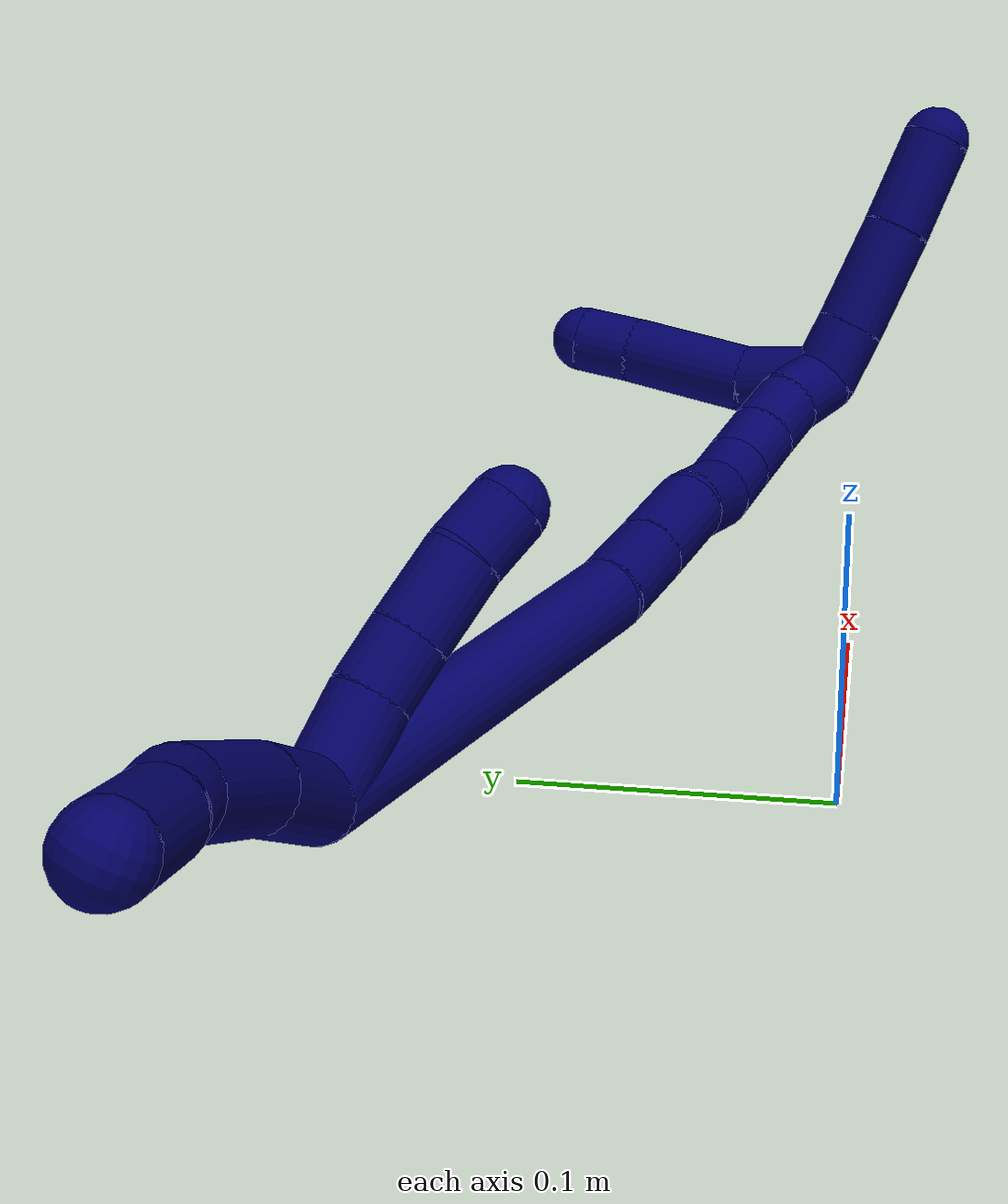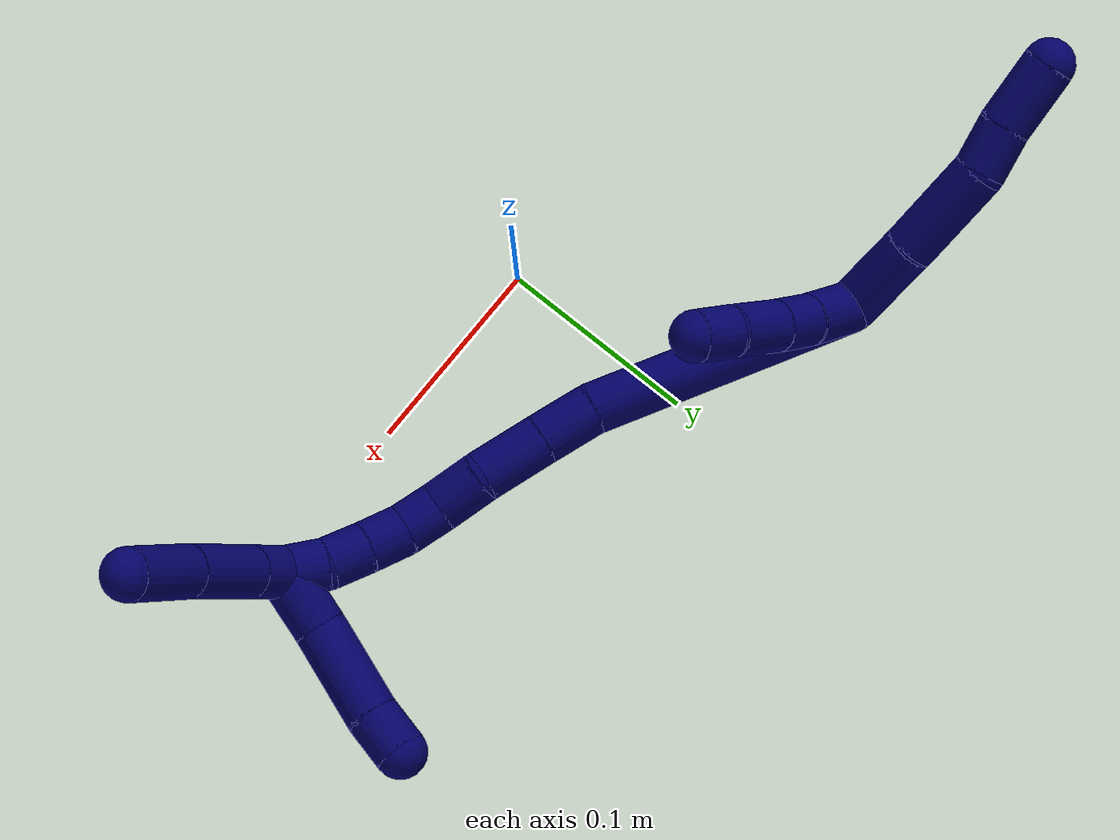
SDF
<sdf version="1.7">
 <world name="default">
  <model name="7">
   <static>0</static>
   <link name="7">
    <collision name="collision-cylinder-e_1_2_8">
     <pose>-0.018203 0.010886 0.001438 -1.43946 -1.02801 0.919199</pose>
     <geometry><cylinder><radius>0.0125</radius><length>0.042516</length></cylinder></geometry>
     <surface>
      <friction><ode><mu>1.16</mu><mu2>1.16</mu2><slip1>0</slip1><slip2>0</slip2></ode></friction>
      <contact><ode><kp>1e+06</kp><kd>1</kd><max_vel>0</max_vel><min_depth>0.001</min_depth></ode></contact>
     </surface>
    </collision>
    <visual name="visual-cylinder-e_1_2_8">
     <pose>-0.018203 0.010886 0.001438 -1.43946 -1.02801 0.919199</pose>
     <geometry><cylinder><radius>0.0125</radius><length>0.042516</length></cylinder></geometry>
     <material><ambient>0.003922 0 0.403922 1</ambient></material>
    </visual>
    <collision name="collision-cylinder-e_2_8_9">
     <pose>-0.058462 0.032817 0.002565 -1.59892 -1.10638 1.13168</pose>
     <geometry><cylinder><radius>0.0125</radius><length>0.049338</length></cylinder></geometry>
     <surface>
      <friction><ode><mu>1.16</mu><mu2>1.16</mu2><slip1>0</slip1><slip2>0</slip2></ode></friction>
      <contact><ode><kp>1e+06</kp><kd>1</kd><max_vel>0</max_vel><min_depth>0.001</min_depth></ode></contact>
     </surface>
    </collision>
    <visual name="visual-cylinder-e_2_8_9">
     <pose>-0.058462 0.032817 0.002565 -1.59892 -1.10638 1.13168</pose>
     <geometry><cylinder><radius>0.0125</radius><length>0.049338</length></cylinder></geometry>
     <material><ambient>0.003922 0 0.403922 1</ambient></material>
    </visual>
    <collision name="collision-cylinder-e_3_9_10">
     <pose>-0.092172 0.045883 0.001649 -1.86168 -1.39166 1.68551</pose>
     <geometry><cylinder><radius>0.0125</radius><length>0.023688</length></cylinder></geometry>
     <surface>
      <friction><ode><mu>1.16</mu><mu2>1.16</mu2><slip1>0</slip1><slip2>0</slip2></ode></friction>
      <contact><ode><kp>1e+06</kp><kd>1</kd><max_vel>0</max_vel><min_depth>0.001</min_depth></ode></contact>
     </surface>
    </collision>
    <visual name="visual-cylinder-e_3_9_10">
     <pose>-0.092172 0.045883 0.001649 -1.86168 -1.39166 1.68551</pose>
     <geometry><cylinder><radius>0.0125</radius><length>0.023688</length></cylinder></geometry>
     <material><ambient>0.003922 0 0.403922 1</ambient></material>
    </visual>
    <collision name="collision-cylinder-e_4_10_6">
     <pose>-0.12029 0.052622 -0.000836 -1.94999 -1.27162 1.65558</pose>
     <geometry><cylinder><radius>0.0125</radius><length>0.034458</length></cylinder></geometry>
     <surface>
      <friction><ode><mu>1.16</mu><mu2>1.16</mu2><slip1>0</slip1><slip2>0</slip2></ode></friction>
      <contact><ode><kp>1e+06</kp><kd>1</kd><max_vel>0</max_vel><min_depth>0.001</min_depth></ode></contact>
     </surface>
    </collision>
    <visual name="visual-cylinder-e_4_10_6">
     <pose>-0.12029 0.052622 -0.000836 -1.94999 -1.27162 1.65558</pose>
     <geometry><cylinder><radius>0.0125</radius><length>0.034458</length></cylinder></geometry>
     <material><ambient>0.003922 0 0.403922 1</ambient></material>
    </visual>
    <collision name="collision-cylinder-e_1_2_11">
     <pose>0.005017 -0.000759 0.015047 0.050424 0.321432 0.008176</pose>
     <geometry><cylinder><radius>0.0125</radius><length>0.031758</length></cylinder></geometry>
     <surface>
      <friction><ode><mu>1.16</mu><mu2>1.16</mu2><slip1>0</slip1><slip2>0</slip2></ode></friction>
      <contact><ode><kp>1e+06</kp><kd>1</kd><max_vel>0</max_vel><min_depth>0.001</min_depth></ode></contact>
     </surface>
    </collision>
    <visual name="visual-cylinder-e_1_2_11">
     <pose>0.005017 -0.000759 0.015047 0.050424 0.321432 0.008176</pose>
     <geometry><cylinder><radius>0.0125</radius><length>0.031758</length></cylinder></geometry>
     <material><ambient>0.003922 0 0.403922 1</ambient></material>
    </visual>
    <collision name="collision-cylinder-e_2_11_12">
     <pose>0.012844 -0.002969 0.039745 0.149104 0.280454 0.021085</pose>
     <geometry><cylinder><radius>0.0125</radius><length>0.020313</length></cylinder></geometry>
     <surface>
      <friction><ode><mu>1.16</mu><mu2>1.16</mu2><slip1>0</slip1><slip2>0</slip2></ode></friction>
      <contact><ode><kp>1e+06</kp><kd>1</kd><max_vel>0</max_vel><min_depth>0.001</min_depth></ode></contact>
     </surface>
    </collision>
    <visual name="visual-cylinder-e_2_11_12">
     <pose>0.012844 -0.002969 0.039745 0.149104 0.280454 0.021085</pose>
     <geometry><cylinder><radius>0.0125</radius><length>0.020313</length></cylinder></geometry>
     <material><ambient>0.003922 0 0.403922 1</ambient></material>
    </visual>
    <collision name="collision-cylinder-e_3_12_13">
     <pose>0.018952 -0.006674 0.062775 0.167 0.238368 0.020044</pose>
     <geometry><cylinder><radius>0.0125</radius><length>0.027925</length></cylinder></geometry>
     <surface>
      <friction><ode><mu>1.16</mu><mu2>1.16</mu2><slip1>0</slip1><slip2>0</slip2></ode></friction>
      <contact><ode><kp>1e+06</kp><kd>1</kd><max_vel>0</max_vel><min_depth>0.001</min_depth></ode></contact>
     </surface>
    </collision>
    <visual name="visual-cylinder-e_3_12_13">
     <pose>0.018952 -0.006674 0.062775 0.167 0.238368 0.020044</pose>
     <geometry><cylinder><radius>0.0125</radius><length>0.027925</length></cylinder></geometry>
     <material><ambient>0.003922 0 0.403922 1</ambient></material>
    </visual>
    <collision name="collision-cylinder-e_4_13_5">
     <pose>0.025309 -0.011837 0.085222 0.310302 0.310881 0.04901</pose>
     <geometry><cylinder><radius>0.0125</radius><length>0.020004</length></cylinder></geometry>
     <surface>
      <friction><ode><mu>1.16</mu><mu2>1.16</mu2><slip1>0</slip1><slip2>0</slip2></ode></friction>
      <contact><ode><kp>1e+06</kp><kd>1</kd><max_vel>0</max_vel><min_depth>0.001</min_depth></ode></contact>
     </surface>
    </collision>
    <visual name="visual-cylinder-e_4_13_5">
     <pose>0.025309 -0.011837 0.085222 0.310302 0.310881 0.04901</pose>
     <geometry><cylinder><radius>0.0125</radius><length>0.020004</length></cylinder></geometry>
     <material><ambient>0.003922 0 0.403922 1</ambient></material>
    </visual>
    <collision name="collision-cylinder-e_1_2_14">
     <pose>0.040664 -0.033105 0.041497 0.673378 0.653681 0.236205</pose>
     <geometry><cylinder><radius>0.0125</radius><length>0.133739</length></cylinder></geometry>
     <surface>
      <friction><ode><mu>1.16</mu><mu2>1.16</mu2><slip1>0</slip1><slip2>0</slip2></ode></friction>
      <contact><ode><kp>1e+06</kp><kd>1</kd><max_vel>0</max_vel><min_depth>0.001</min_depth></ode></contact>
     </surface>
    </collision>
    <visual name="visual-cylinder-e_1_2_14">
     <pose>0.040664 -0.033105 0.041497 0.673378 0.653681 0.236205</pose>
     <geometry><cylinder><radius>0.0125</radius><length>0.133739</length></cylinder></geometry>
     <material><ambient>0.003922 0 0.403922 1</ambient></material>
    </visual>
    <collision name="collision-cylinder-e_2_14_15">
     <pose>0.091403 -0.071295 0.091443 0.5418 0.796152 0.23253</pose>
     <geometry><cylinder><radius>0.0125</radius><length>0.028195</length></cylinder></geometry>
     <surface>
      <friction><ode><mu>1.16</mu><mu2>1.16</mu2><slip1>0</slip1><slip2>0</slip2></ode></friction>
      <contact><ode><kp>1e+06</kp><kd>1</kd><max_vel>0</max_vel><min_depth>0.001</min_depth></ode></contact>
     </surface>
    </collision>
    <visual name="visual-cylinder-e_2_14_15">
     <pose>0.091403 -0.071295 0.091443 0.5418 0.796152 0.23253</pose>
     <geometry><cylinder><radius>0.0125</radius><length>0.028195</length></cylinder></geometry>
     <material><ambient>0.003922 0 0.403922 1</ambient></material>
    </visual>
    <collision name="collision-cylinder-e_3_15_16">
     <pose>0.113374 -0.082095 0.109883 0.519583 0.801856 0.224391</pose>
     <geometry><cylinder><radius>0.0125</radius><length>0.033107</length></cylinder></geometry>
     <surface>
      <friction><ode><mu>1.16</mu><mu2>1.16</mu2><slip1>0</slip1><slip2>0</slip2></ode></friction>
      <contact><ode><kp>1e+06</kp><kd>1</kd><max_vel>0</max_vel><min_depth>0.001</min_depth></ode></contact>
     </surface>
    </collision>
    <visual name="visual-cylinder-e_3_15_16">
     <pose>0.113374 -0.082095 0.109883 0.519583 0.801856 0.224391</pose>
     <geometry><cylinder><radius>0.0125</radius><length>0.033107</length></cylinder></geometry>
     <material><ambient>0.003922 0 0.403922 1</ambient></material>
    </visual>
    <collision name="collision-cylinder-e_4_16_17">
     <pose>0.135188 -0.093673 0.124309 0.923175 0.932964 0.490858</pose>
     <geometry><cylinder><radius>0.0125</radius><length>0.024689</length></cylinder></geometry>
     <surface>
      <friction><ode><mu>1.16</mu><mu2>1.16</mu2><slip1>0</slip1><slip2>0</slip2></ode></friction>
      <contact><ode><kp>1e+06</kp><kd>1</kd><max_vel>0</max_vel><min_depth>0.001</min_depth></ode></contact>
     </surface>
    </collision>
    <visual name="visual-cylinder-e_4_16_17">
     <pose>0.135188 -0.093673 0.124309 0.923175 0.932964 0.490858</pose>
     <geometry><cylinder><radius>0.0125</radius><length>0.024689</length></cylinder></geometry>
     <material><ambient>0.003922 0 0.403922 1</ambient></material>
    </visual>
    <collision name="collision-cylinder-e_5_17_18">
     <pose>0.152425 -0.1027 0.134953 0.471394 0.809904 0.205164</pose>
     <geometry><cylinder><radius>0.0125</radius><length>0.020214</length></cylinder></geometry>
     <surface>
      <friction><ode><mu>1.16</mu><mu2>1.16</mu2><slip1>0</slip1><slip2>0</slip2></ode></friction>
      <contact><ode><kp>1e+06</kp><kd>1</kd><max_vel>0</max_vel><min_depth>0.001</min_depth></ode></contact>
     </surface>
    </collision>
    <visual name="visual-cylinder-e_5_17_18">
     <pose>0.152425 -0.1027 0.134953 0.471394 0.809904 0.205164</pose>
     <geometry><cylinder><radius>0.0125</radius><length>0.020214</length></cylinder></geometry>
     <material><ambient>0.003922 0 0.403922 1</ambient></material>
    </visual>
    <collision name="collision-cylinder-e_6_18_19">
     <pose>0.165535 -0.10891 0.14874 0.382063 0.616758 0.12305</pose>
     <geometry><cylinder><radius>0.0125</radius><length>0.020021</length></cylinder></geometry>
     <surface>
      <friction><ode><mu>1.16</mu><mu2>1.16</mu2><slip1>0</slip1><slip2>0</slip2></ode></friction>
      <contact><ode><kp>1e+06</kp><kd>1</kd><max_vel>0</max_vel><min_depth>0.001</min_depth></ode></contact>
     </surface>
    </collision>
    <visual name="visual-cylinder-e_6_18_19">
     <pose>0.165535 -0.10891 0.14874 0.382063 0.616758 0.12305</pose>
     <geometry><cylinder><radius>0.0125</radius><length>0.020021</length></cylinder></geometry>
     <material><ambient>0.003922 0 0.403922 1</ambient></material>
    </visual>
    <collision name="collision-cylinder-e_7_19_20">
     <pose>0.176828 -0.115136 0.164043 0.390645 0.582408 0.118459</pose>
     <geometry><cylinder><radius>0.0125</radius><length>0.020009</length></cylinder></geometry>
     <surface>
      <friction><ode><mu>1.16</mu><mu2>1.16</mu2><slip1>0</slip1><slip2>0</slip2></ode></friction>
      <contact><ode><kp>1e+06</kp><kd>1</kd><max_vel>0</max_vel><min_depth>0.001</min_depth></ode></contact>
     </surface>
    </collision>
    <visual name="visual-cylinder-e_7_19_20">
     <pose>0.176828 -0.115136 0.164043 0.390645 0.582408 0.118459</pose>
     <geometry><cylinder><radius>0.0125</radius><length>0.020009</length></cylinder></geometry>
     <material><ambient>0.003922 0 0.403922 1</ambient></material>
    </visual>
    <collision name="collision-cylinder-e_8_20_1">
     <pose>0.186569 -0.123482 0.179228 0.605548 0.437006 0.138504</pose>
     <geometry><cylinder><radius>0.0125</radius><length>0.020025</length></cylinder></geometry>
     <surface>
      <friction><ode><mu>1.16</mu><mu2>1.16</mu2><slip1>0</slip1><slip2>0</slip2></ode></friction>
      <contact><ode><kp>1e+06</kp><kd>1</kd><max_vel>0</max_vel><min_depth>0.001</min_depth></ode></contact>
     </surface>
    </collision>
    <visual name="visual-cylinder-e_8_20_1">
     <pose>0.186569 -0.123482 0.179228 0.605548 0.437006 0.138504</pose>
     <geometry><cylinder><radius>0.0125</radius><length>0.020025</length></cylinder></geometry>
     <material><ambient>0.003922 0 0.403922 1</ambient></material>
    </visual>
    <collision name="collision-cylinder-e_1_1_21">
     <pose>0.190824 -0.128658 0.197638 0.001147 0.001557 1e-06</pose>
     <geometry><cylinder><radius>0.0125</radius><length>0.021903</length></cylinder></geometry>
     <surface>
      <friction><ode><mu>1.16</mu><mu2>1.16</mu2><slip1>0</slip1><slip2>0</slip2></ode></friction>
      <contact><ode><kp>1e+06</kp><kd>1</kd><max_vel>0</max_vel><min_depth>0.001</min_depth></ode></contact>
     </surface>
    </collision>
    <visual name="visual-cylinder-e_1_1_21">
     <pose>0.190824 -0.128658 0.197638 0.001147 0.001557 1e-06</pose>
     <geometry><cylinder><radius>0.0125</radius><length>0.021903</length></cylinder></geometry>
     <material><ambient>0.003922 0 0.403922 1</ambient></material>
    </visual>
    <collision name="collision-cylinder-e_2_21_22">
     <pose>0.190856 -0.128047 0.22888 -0.030718 0.000756 -1.2e-05</pose>
     <geometry><cylinder><radius>0.0125</radius><length>0.040601</length></cylinder></geometry>
     <surface>
      <friction><ode><mu>1.16</mu><mu2>1.16</mu2><slip1>0</slip1><slip2>0</slip2></ode></friction>
      <contact><ode><kp>1e+06</kp><kd>1</kd><max_vel>0</max_vel><min_depth>0.001</min_depth></ode></contact>
     </surface>
    </collision>
    <visual name="visual-cylinder-e_2_21_22">
     <pose>0.190856 -0.128047 0.22888 -0.030718 0.000756 -1.2e-05</pose>
     <geometry><cylinder><radius>0.0125</radius><length>0.040601</length></cylinder></geometry>
     <material><ambient>0.003922 0 0.403922 1</ambient></material>
    </visual>
    <collision name="collision-cylinder-e_3_22_4">
     <pose>0.191533 -0.12646 0.267883 -0.051417 0.035299 -0.000908</pose>
     <geometry><cylinder><radius>0.0125</radius><length>0.037496</length></cylinder></geometry>
     <surface>
      <friction><ode><mu>1.16</mu><mu2>1.16</mu2><slip1>0</slip1><slip2>0</slip2></ode></friction>
      <contact><ode><kp>1e+06</kp><kd>1</kd><max_vel>0</max_vel><min_depth>0.001</min_depth></ode></contact>
     </surface>
    </collision>
    <visual name="visual-cylinder-e_3_22_4">
     <pose>0.191533 -0.12646 0.267883 -0.051417 0.035299 -0.000908</pose>
     <geometry><cylinder><radius>0.0125</radius><length>0.037496</length></cylinder></geometry>
     <material><ambient>0.003922 0 0.403922 1</ambient></material>
    </visual>
    <collision name="collision-cylinder-e_1_1_23">
     <pose>0.200358 -0.118168 0.180678 -2.09143 0.669103 -1.08089</pose>
     <geometry><cylinder><radius>0.0125</radius><length>0.030795</length></cylinder></geometry>
     <surface>
      <friction><ode><mu>1.16</mu><mu2>1.16</mu2><slip1>0</slip1><slip2>0</slip2></ode></friction>
      <contact><ode><kp>1e+06</kp><kd>1</kd><max_vel>0</max_vel><min_depth>0.001</min_depth></ode></contact>
     </surface>
    </collision>
    <visual name="visual-cylinder-e_1_1_23">
     <pose>0.200358 -0.118168 0.180678 -2.09143 0.669103 -1.08089</pose>
     <geometry><cylinder><radius>0.0125</radius><length>0.030795</length></cylinder></geometry>
     <material><ambient>0.003922 0 0.403922 1</ambient></material>
    </visual>
    <collision name="collision-cylinder-e_2_23_24">
     <pose>0.22354 -0.088592 0.170399 -1.79082 0.6084 -0.74703</pose>
     <geometry><cylinder><radius>0.0125</radius><length>0.047699</length></cylinder></geometry>
     <surface>
      <friction><ode><mu>1.16</mu><mu2>1.16</mu2><slip1>0</slip1><slip2>0</slip2></ode></friction>
      <contact><ode><kp>1e+06</kp><kd>1</kd><max_vel>0</max_vel><min_depth>0.001</min_depth></ode></contact>
     </surface>
    </collision>
    <visual name="visual-cylinder-e_2_23_24">
     <pose>0.22354 -0.088592 0.170399 -1.79082 0.6084 -0.74703</pose>
     <geometry><cylinder><radius>0.0125</radius><length>0.047699</length></cylinder></geometry>
     <material><ambient>0.003922 0 0.403922 1</ambient></material>
    </visual>
    <collision name="collision-cylinder-e_3_24_3">
     <pose>0.242329 -0.06037 0.163725 -1.82833 0.500267 -0.640178</pose>
     <geometry><cylinder><radius>0.0125</radius><length>0.021505</length></cylinder></geometry>
     <surface>
      <friction><ode><mu>1.16</mu><mu2>1.16</mu2><slip1>0</slip1><slip2>0</slip2></ode></friction>
      <contact><ode><kp>1e+06</kp><kd>1</kd><max_vel>0</max_vel><min_depth>0.001</min_depth></ode></contact>
     </surface>
    </collision>
    <visual name="visual-cylinder-e_3_24_3">
     <pose>0.242329 -0.06037 0.163725 -1.82833 0.500267 -0.640178</pose>
     <geometry><cylinder><radius>0.0125</radius><length>0.021505</length></cylinder></geometry>
     <material><ambient>0.003922 0 0.403922 1</ambient></material>
    </visual>
    <collision name="collision-sphere-3">
     <pose>0.247486 -0.051246 0.161322 0 -0 0</pose>
     <geometry><sphere><radius>0.0125</radius></sphere></geometry>
     <surface>
      <friction><ode><mu>1.16</mu><mu2>1.16</mu2><slip1>0</slip1><slip2>0</slip2></ode></friction>
      <contact><ode><kp>1e+06</kp><kd>1</kd><max_vel>0</max_vel><min_depth>0.001</min_depth></ode></contact>
     </surface>
    </collision>
    <visual name="visual-sphere-3">
     <pose>0.247486 -0.051246 0.161322 0 -0 0</pose>
     <geometry><sphere><radius>0.0125</radius></sphere></geometry>
     <material><ambient>0.003922 0 0.403922 1</ambient></material>
    </visual>
    <collision name="collision-sphere-24">
     <pose>0.237171 -0.069494 0.166128 0 -0 0</pose>
     <geometry><sphere><radius>0.0125</radius></sphere></geometry>
     <surface>
      <friction><ode><mu>1.16</mu><mu2>1.16</mu2><slip1>0</slip1><slip2>0</slip2></ode></friction>
      <contact><ode><kp>1e+06</kp><kd>1</kd><max_vel>0</max_vel><min_depth>0.001</min_depth></ode></contact>
     </surface>
    </collision>
    <visual name="visual-sphere-24">
     <pose>0.237171 -0.069494 0.166128 0 -0 0</pose>
     <geometry><sphere><radius>0.0125</radius></sphere></geometry>
     <material><ambient>0.003922 0 0.403922 1</ambient></material>
    </visual>
    <collision name="collision-sphere-23">
     <pose>0.209908 -0.10769 0.174671 0 -0 0</pose>
     <geometry><sphere><radius>0.0125</radius></sphere></geometry>
     <surface>
      <friction><ode><mu>1.16</mu><mu2>1.16</mu2><slip1>0</slip1><slip2>0</slip2></ode></friction>
      <contact><ode><kp>1e+06</kp><kd>1</kd><max_vel>0</max_vel><min_depth>0.001</min_depth></ode></contact>
     </surface>
    </collision>
    <visual name="visual-sphere-23">
     <pose>0.209908 -0.10769 0.174671 0 -0 0</pose>
     <geometry><sphere><radius>0.0125</radius></sphere></geometry>
     <material><ambient>0.003922 0 0.403922 1</ambient></material>
    </visual>
    <collision name="collision-sphere-4">
     <pose>0.192195 -0.125497 0.286594 0 -0 0</pose>
     <geometry><sphere><radius>0.0125</radius></sphere></geometry>
     <surface>
      <friction><ode><mu>1.16</mu><mu2>1.16</mu2><slip1>0</slip1><slip2>0</slip2></ode></friction>
      <contact><ode><kp>1e+06</kp><kd>1</kd><max_vel>0</max_vel><min_depth>0.001</min_depth></ode></contact>
     </surface>
    </collision>
    <visual name="visual-sphere-4">
     <pose>0.192195 -0.125497 0.286594 0 -0 0</pose>
     <geometry><sphere><radius>0.0125</radius></sphere></geometry>
     <material><ambient>0.003922 0 0.403922 1</ambient></material>
    </visual>
    <collision name="collision-sphere-22">
     <pose>0.190871 -0.127423 0.249171 0 -0 0</pose>
     <geometry><sphere><radius>0.0125</radius></sphere></geometry>
     <surface>
      <friction><ode><mu>1.16</mu><mu2>1.16</mu2><slip1>0</slip1><slip2>0</slip2></ode></friction>
      <contact><ode><kp>1e+06</kp><kd>1</kd><max_vel>0</max_vel><min_depth>0.001</min_depth></ode></contact>
     </surface>
    </collision>
    <visual name="visual-sphere-22">
     <pose>0.190871 -0.127423 0.249171 0 -0 0</pose>
     <geometry><sphere><radius>0.0125</radius></sphere></geometry>
     <material><ambient>0.003922 0 0.403922 1</ambient></material>
    </visual>
    <collision name="collision-sphere-21">
     <pose>0.190841 -0.12867 0.208589 0 -0 0</pose>
     <geometry><sphere><radius>0.0125</radius></sphere></geometry>
     <surface>
      <friction><ode><mu>1.16</mu><mu2>1.16</mu2><slip1>0</slip1><slip2>0</slip2></ode></friction>
      <contact><ode><kp>1e+06</kp><kd>1</kd><max_vel>0</max_vel><min_depth>0.001</min_depth></ode></contact>
     </surface>
    </collision>
    <visual name="visual-sphere-21">
     <pose>0.190841 -0.12867 0.208589 0 -0 0</pose>
     <geometry><sphere><radius>0.0125</radius></sphere></geometry>
     <material><ambient>0.003922 0 0.403922 1</ambient></material>
    </visual>
    <collision name="collision-sphere-1">
     <pose>0.190807 -0.128645 0.186686 0 -0 0</pose>
     <geometry><sphere><radius>0.0125</radius></sphere></geometry>
     <surface>
      <friction><ode><mu>1.16</mu><mu2>1.16</mu2><slip1>0</slip1><slip2>0</slip2></ode></friction>
      <contact><ode><kp>1e+06</kp><kd>1</kd><max_vel>0</max_vel><min_depth>0.001</min_depth></ode></contact>
     </surface>
    </collision>
    <visual name="visual-sphere-1">
     <pose>0.190807 -0.128645 0.186686 0 -0 0</pose>
     <geometry><sphere><radius>0.0125</radius></sphere></geometry>
     <material><ambient>0.003922 0 0.403922 1</ambient></material>
    </visual>
    <collision name="collision-sphere-11">
     <pose>0.010033 -0.001519 0.030093 0 -0 0</pose>
     <geometry><sphere><radius>0.0125</radius></sphere></geometry>
     <surface>
      <friction><ode><mu>1.16</mu><mu2>1.16</mu2><slip1>0</slip1><slip2>0</slip2></ode></friction>
      <contact><ode><kp>1e+06</kp><kd>1</kd><max_vel>0</max_vel><min_depth>0.001</min_depth></ode></contact>
     </surface>
    </collision>
    <visual name="visual-sphere-11">
     <pose>0.010033 -0.001519 0.030093 0 -0 0</pose>
     <geometry><sphere><radius>0.0125</radius></sphere></geometry>
     <material><ambient>0.003922 0 0.403922 1</ambient></material>
    </visual>
    <collision name="collision-sphere-6">
     <pose>-0.136754 0.057339 -0.002716 0 -0 0</pose>
     <geometry><sphere><radius>0.0125</radius></sphere></geometry>
     <surface>
      <friction><ode><mu>1.16</mu><mu2>1.16</mu2><slip1>0</slip1><slip2>0</slip2></ode></friction>
      <contact><ode><kp>1e+06</kp><kd>1</kd><max_vel>0</max_vel><min_depth>0.001</min_depth></ode></contact>
     </surface>
    </collision>
    <visual name="visual-sphere-6">
     <pose>-0.136754 0.057339 -0.002716 0 -0 0</pose>
     <geometry><sphere><radius>0.0125</radius></sphere></geometry>
     <material><ambient>0.003922 0 0.403922 1</ambient></material>
    </visual>
    <collision name="collision-sphere-10">
     <pose>-0.103826 0.047905 0.001044 0 -0 0</pose>
     <geometry><sphere><radius>0.0125</radius></sphere></geometry>
     <surface>
      <friction><ode><mu>1.16</mu><mu2>1.16</mu2><slip1>0</slip1><slip2>0</slip2></ode></friction>
      <contact><ode><kp>1e+06</kp><kd>1</kd><max_vel>0</max_vel><min_depth>0.001</min_depth></ode></contact>
     </surface>
    </collision>
    <visual name="visual-sphere-10">
     <pose>-0.103826 0.047905 0.001044 0 -0 0</pose>
     <geometry><sphere><radius>0.0125</radius></sphere></geometry>
     <material><ambient>0.003922 0 0.403922 1</ambient></material>
    </visual>
    <collision name="collision-sphere-9">
     <pose>-0.080518 0.043861 0.002254 0 -0 0</pose>
     <geometry><sphere><radius>0.0125</radius></sphere></geometry>
     <surface>
      <friction><ode><mu>1.16</mu><mu2>1.16</mu2><slip1>0</slip1><slip2>0</slip2></ode></friction>
      <contact><ode><kp>1e+06</kp><kd>1</kd><max_vel>0</max_vel><min_depth>0.001</min_depth></ode></contact>
     </surface>
    </collision>
    <visual name="visual-sphere-9">
     <pose>-0.080518 0.043861 0.002254 0 -0 0</pose>
     <geometry><sphere><radius>0.0125</radius></sphere></geometry>
     <material><ambient>0.003922 0 0.403922 1</ambient></material>
    </visual>
    <collision name="collision-sphere-2">
     <geometry><sphere><radius>0.0125</radius></sphere></geometry>
     <surface>
      <friction><ode><mu>1.16</mu><mu2>1.16</mu2><slip1>0</slip1><slip2>0</slip2></ode></friction>
      <contact><ode><kp>1e+06</kp><kd>1</kd><max_vel>0</max_vel><min_depth>0.001</min_depth></ode></contact>
     </surface>
    </collision>
    <visual name="visual-sphere-2">
     <geometry><sphere><radius>0.0125</radius></sphere></geometry>
     <material><ambient>0.003922 0 0.403922 1</ambient></material>
    </visual>
    <collision name="collision-sphere-19">
     <pose>0.171325 -0.111955 0.156317 0 -0 0</pose>
     <geometry><sphere><radius>0.0125</radius></sphere></geometry>
     <surface>
      <friction><ode><mu>1.16</mu><mu2>1.16</mu2><slip1>0</slip1><slip2>0</slip2></ode></friction>
      <contact><ode><kp>1e+06</kp><kd>1</kd><max_vel>0</max_vel><min_depth>0.001</min_depth></ode></contact>
     </surface>
    </collision>
    <visual name="visual-sphere-19">
     <pose>0.171325 -0.111955 0.156317 0 -0 0</pose>
     <geometry><sphere><radius>0.0125</radius></sphere></geometry>
     <material><ambient>0.003922 0 0.403922 1</ambient></material>
    </visual>
    <collision name="collision-sphere-8">
     <pose>-0.036406 0.021772 0.002876 0 -0 0</pose>
     <geometry><sphere><radius>0.0125</radius></sphere></geometry>
     <surface>
      <friction><ode><mu>1.16</mu><mu2>1.16</mu2><slip1>0</slip1><slip2>0</slip2></ode></friction>
      <contact><ode><kp>1e+06</kp><kd>1</kd><max_vel>0</max_vel><min_depth>0.001</min_depth></ode></contact>
     </surface>
    </collision>
    <visual name="visual-sphere-8">
     <pose>-0.036406 0.021772 0.002876 0 -0 0</pose>
     <geometry><sphere><radius>0.0125</radius></sphere></geometry>
     <material><ambient>0.003922 0 0.403922 1</ambient></material>
    </visual>
    <collision name="collision-sphere-12">
     <pose>0.015656 -0.004418 0.049396 0 -0 0</pose>
     <geometry><sphere><radius>0.0125</radius></sphere></geometry>
     <surface>
      <friction><ode><mu>1.16</mu><mu2>1.16</mu2><slip1>0</slip1><slip2>0</slip2></ode></friction>
      <contact><ode><kp>1e+06</kp><kd>1</kd><max_vel>0</max_vel><min_depth>0.001</min_depth></ode></contact>
     </surface>
    </collision>
    <visual name="visual-sphere-12">
     <pose>0.015656 -0.004418 0.049396 0 -0 0</pose>
     <geometry><sphere><radius>0.0125</radius></sphere></geometry>
     <material><ambient>0.003922 0 0.403922 1</ambient></material>
    </visual>
    <collision name="collision-sphere-13">
     <pose>0.022249 -0.008929 0.076154 0 -0 0</pose>
     <geometry><sphere><radius>0.0125</radius></sphere></geometry>
     <surface>
      <friction><ode><mu>1.16</mu><mu2>1.16</mu2><slip1>0</slip1><slip2>0</slip2></ode></friction>
      <contact><ode><kp>1e+06</kp><kd>1</kd><max_vel>0</max_vel><min_depth>0.001</min_depth></ode></contact>
     </surface>
    </collision>
    <visual name="visual-sphere-13">
     <pose>0.022249 -0.008929 0.076154 0 -0 0</pose>
     <geometry><sphere><radius>0.0125</radius></sphere></geometry>
     <material><ambient>0.003922 0 0.403922 1</ambient></material>
    </visual>
    <collision name="collision-sphere-5">
     <pose>0.028368 -0.014744 0.094289 0 -0 0</pose>
     <geometry><sphere><radius>0.0125</radius></sphere></geometry>
     <surface>
      <friction><ode><mu>1.16</mu><mu2>1.16</mu2><slip1>0</slip1><slip2>0</slip2></ode></friction>
      <contact><ode><kp>1e+06</kp><kd>1</kd><max_vel>0</max_vel><min_depth>0.001</min_depth></ode></contact>
     </surface>
    </collision>
    <visual name="visual-sphere-5">
     <pose>0.028368 -0.014744 0.094289 0 -0 0</pose>
     <geometry><sphere><radius>0.0125</radius></sphere></geometry>
     <material><ambient>0.003922 0 0.403922 1</ambient></material>
    </visual>
    <collision name="collision-sphere-14">
     <pose>0.081329 -0.06621 0.082994 0 -0 0</pose>
     <geometry><sphere><radius>0.0125</radius></sphere></geometry>
     <surface>
      <friction><ode><mu>1.16</mu><mu2>1.16</mu2><slip1>0</slip1><slip2>0</slip2></ode></friction>
      <contact><ode><kp>1e+06</kp><kd>1</kd><max_vel>0</max_vel><min_depth>0.001</min_depth></ode></contact>
     </surface>
    </collision>
    <visual name="visual-sphere-14">
     <pose>0.081329 -0.06621 0.082994 0 -0 0</pose>
     <geometry><sphere><radius>0.0125</radius></sphere></geometry>
     <material><ambient>0.003922 0 0.403922 1</ambient></material>
    </visual>
    <collision name="collision-sphere-15">
     <pose>0.101478 -0.07638 0.099891 0 -0 0</pose>
     <geometry><sphere><radius>0.0125</radius></sphere></geometry>
     <surface>
      <friction><ode><mu>1.16</mu><mu2>1.16</mu2><slip1>0</slip1><slip2>0</slip2></ode></friction>
      <contact><ode><kp>1e+06</kp><kd>1</kd><max_vel>0</max_vel><min_depth>0.001</min_depth></ode></contact>
     </surface>
    </collision>
    <visual name="visual-sphere-15">
     <pose>0.101478 -0.07638 0.099891 0 -0 0</pose>
     <geometry><sphere><radius>0.0125</radius></sphere></geometry>
     <material><ambient>0.003922 0 0.403922 1</ambient></material>
    </visual>
    <collision name="collision-sphere-16">
     <pose>0.12527 -0.08781 0.119874 0 -0 0</pose>
     <geometry><sphere><radius>0.0125</radius></sphere></geometry>
     <surface>
      <friction><ode><mu>1.16</mu><mu2>1.16</mu2><slip1>0</slip1><slip2>0</slip2></ode></friction>
      <contact><ode><kp>1e+06</kp><kd>1</kd><max_vel>0</max_vel><min_depth>0.001</min_depth></ode></contact>
     </surface>
    </collision>
    <visual name="visual-sphere-16">
     <pose>0.12527 -0.08781 0.119874 0 -0 0</pose>
     <geometry><sphere><radius>0.0125</radius></sphere></geometry>
     <material><ambient>0.003922 0 0.403922 1</ambient></material>
    </visual>
    <collision name="collision-sphere-17">
     <pose>0.145106 -0.099535 0.128744 0 -0 0</pose>
     <geometry><sphere><radius>0.0125</radius></sphere></geometry>
     <surface>
      <friction><ode><mu>1.16</mu><mu2>1.16</mu2><slip1>0</slip1><slip2>0</slip2></ode></friction>
      <contact><ode><kp>1e+06</kp><kd>1</kd><max_vel>0</max_vel><min_depth>0.001</min_depth></ode></contact>
     </surface>
    </collision>
    <visual name="visual-sphere-17">
     <pose>0.145106 -0.099535 0.128744 0 -0 0</pose>
     <geometry><sphere><radius>0.0125</radius></sphere></geometry>
     <material><ambient>0.003922 0 0.403922 1</ambient></material>
    </visual>
    <collision name="collision-sphere-18">
     <pose>0.159745 -0.105865 0.141162 0 -0 0</pose>
     <geometry><sphere><radius>0.0125</radius></sphere></geometry>
     <surface>
      <friction><ode><mu>1.16</mu><mu2>1.16</mu2><slip1>0</slip1><slip2>0</slip2></ode></friction>
      <contact><ode><kp>1e+06</kp><kd>1</kd><max_vel>0</max_vel><min_depth>0.001</min_depth></ode></contact>
     </surface>
    </collision>
    <visual name="visual-sphere-18">
     <pose>0.159745 -0.105865 0.141162 0 -0 0</pose>
     <geometry><sphere><radius>0.0125</radius></sphere></geometry>
     <material><ambient>0.003922 0 0.403922 1</ambient></material>
    </visual>
    <collision name="collision-sphere-20">
     <pose>0.182331 -0.118318 0.171769 0 -0 0</pose>
     <geometry><sphere><radius>0.0125</radius></sphere></geometry>
     <surface>
      <friction><ode><mu>1.16</mu><mu2>1.16</mu2><slip1>0</slip1><slip2>0</slip2></ode></friction>
      <contact><ode><kp>1e+06</kp><kd>1</kd><max_vel>0</max_vel><min_depth>0.001</min_depth></ode></contact>
     </surface>
    </collision>
    <visual name="visual-sphere-20">
     <pose>0.182331 -0.118318 0.171769 0 -0 0</pose>
     <geometry><sphere><radius>0.0125</radius></sphere></geometry>
     <material><ambient>0.003922 0 0.403922 1</ambient></material>
    </visual>
    <inertial>
     <pose>0.081867 -0.050598 0.097643 0 -0 0</pose>
     <mass>0.75</mass>
     <inertia>
      <ixx>0.000259</ixx>
      <ixy>0</ixy>
      <ixz>0</ixz>
      <iyy>0.000278</iyy>
      <iyz>0</iyz>
      <izz>-1.1e-05</izz>
     </inertia>
    </inertial>
   </link>
   <pose>-0.08132 0.140096 0.04448 0.566749 0.346054 0.347469</pose>
  </model>
 </world>
</sdf>
